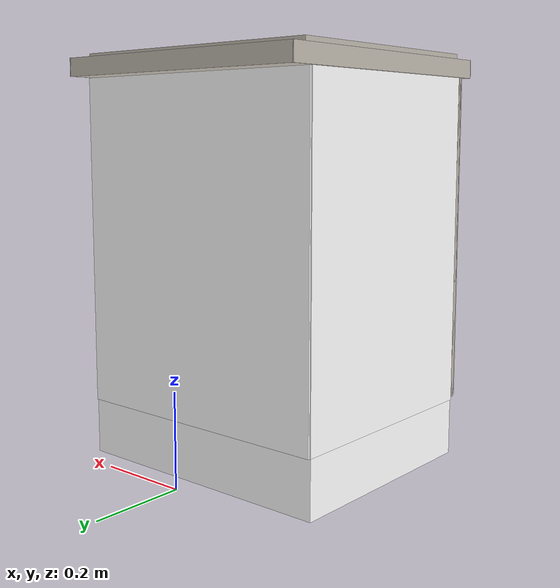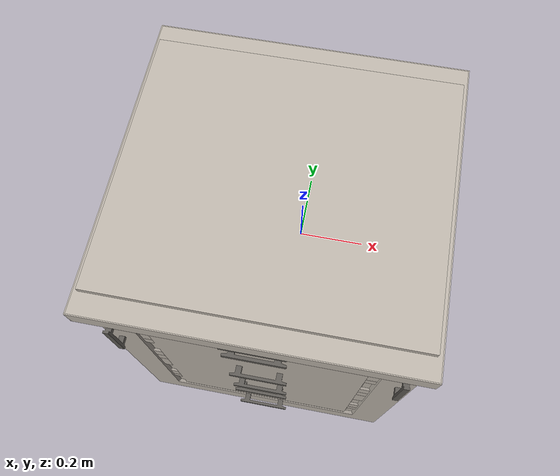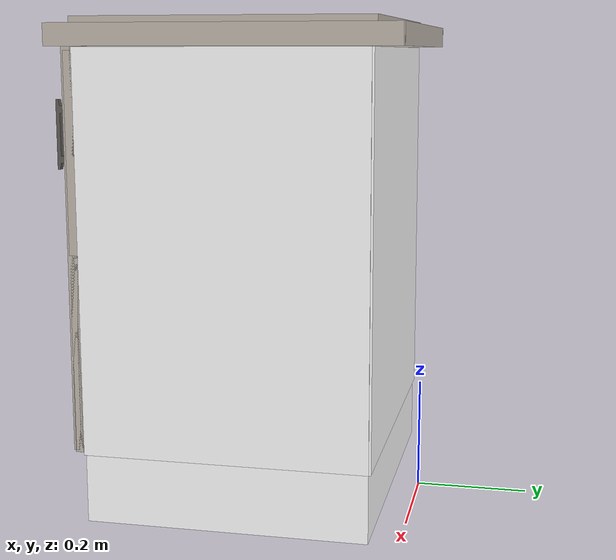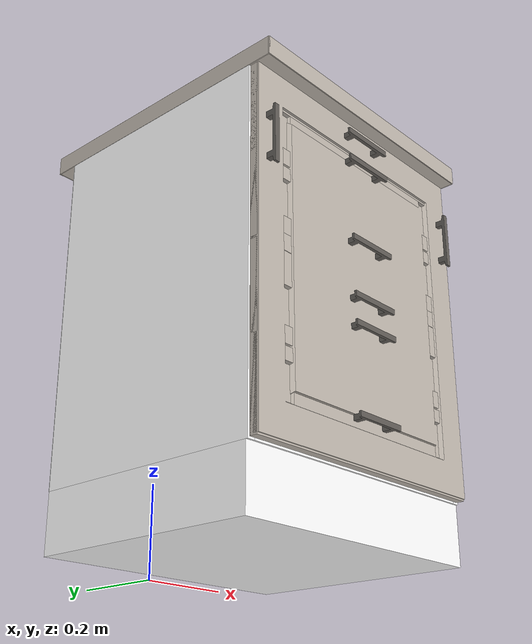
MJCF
<?xml version="1.0" encoding="utf-8"?>
<mujoco model="base_cabinet_600">
  <compiler angle="radian" meshdir="assets" texturedir="assets" autolimits="true"/>
  <asset>
    <texture type="2d" name="drawer_600_full" file="drawer_600_full.png"/>
    <texture type="2d" name="drawer_600_half" file="drawer_600_half.png"/>
    <texture type="2d" name="drawer_600_quarter" file="drawer_600_quarter.png"/>
    <texture type="2d" name="counter" file="counter.png"/>
    <texture type="2d" name="hob" file="hob.png"/>
    <texture type="2d" name="handle" file="handle.png"/>
    <material name="cabinet" shininess="0.1"/>
    <material name="back" shininess="0.1"/>
    <material name="counter" shininess="0.1" texture="counter" texuniform="true" texrepeat="2 2"/>
    <material name="hob" texture="hob"/>
    <material name="drawer_600_full" shininess="0.1" texture="drawer_600_full"/>
    <material name="drawer_600_half" shininess="0.1" texture="drawer_600_half"/>
    <material name="drawer_600_quarter" shininess="0.1" texture="drawer_600_quarter"/>
    <material name="handle" rgba="0.5 0.5 0.5 1" texture="handle"/>
    <mesh file="drawer_600_full.obj"/>
    <mesh file="drawer_600_half.obj"/>
    <mesh file="drawer_600_quarter.obj"/>
    <mesh file="drawer_handle.obj"/>
  </asset>
  <default>
    <default class="base_cabinet_600">
      <geom density="10" solimp="0.998 0.998 0.001" solref="0.004 1"/>
      <joint solimplimit="0.998 0.998 0.001" solreflimit="0.004 1"/>
      <default class="visual">
        <geom contype="0" conaffinity="0"/>
      </default>
      <default class="collision">
        <geom mass="0" group="3"/>
      </default>
      <site size="0.001" rgba="0.5 0.5 0.5 0.3" group="4"/>
    </default>
  </default>
  <worldbody>
    <body name="base_cabinet_600" childclass="base_cabinet_600">
      <body name="walls">
        <geom pos="0 -0.048 0.47" size="0.298 0.35 0.002" type="box" material="back" euler="1.5708 0 0"/>
        <geom pos="0.292 -0.3 0.47" size="0.25 0.35 0.008" type="box" material="cabinet" euler="1.5708 1.5708 0"/>
        <geom pos="-0.292 -0.3 0.47" size="0.25 0.35 0.008" type="box" material="cabinet" euler="1.5708 1.5708 0"/>
        <body name="shelf_bottom">
          <geom pos="0 -0.3 0.128" size="0.25 0.284 0.008" type="box" material="cabinet" euler="0 0 1.5708"/>
        </body>
        <geom pos="0 -0.51 0.812" size="0.04 0.284 0.008" type="box" material="cabinet" euler="0 0 1.5708"/>
        <geom pos="0 -0.298 0.06" size="0.3 0.06 0.248" type="box" material="cabinet" euler="1.5708 0 0"/>
      </body>
      <body name="counter" pos="0 -0.2985 0.84">
        <geom class="visual" size="0.298 0.298 0.019" type="box" material="counter" euler="0 0 1.5708"/>
        <geom class="visual" pos="0 -0.299 0" size="0.3 0.019 0.001" type="box" material="counter" euler="1.5708 0 0"/>
        <geom class="visual" pos="0 0.299 0" size="0.3 0.019 0.001" type="box" material="counter" euler="1.5708 0 0"/>
        <geom class="visual" pos="0.299 0 0" size="0.3 0.019 0.001" type="box" material="counter" euler="1.5708 1.5708 0"/>
        <geom class="visual" pos="-0.299 0 0" size="0.3 0.019 0.001" type="box" material="counter" euler="1.5708 1.5708 0"/>
        <geom class="collision" size="0.3 0.3 0.019" type="box" euler="0 0 1.5708" solimp="0.95 0.98 0.001"/>
      </body>
      <body name="hob" pos="0 -0.3 0.85">
        <geom size="0.29 0.257 0.02" type="box" material="hob" solimp="0.95 0.98 0.001"/>
        <site name="hob_site_1" pos="-0.155 -0.08 0.02"/>
        <site name="hob_site_2" pos="-0.155 0.142 0.02"/>
        <site name="hob_site_3" pos="0.122 0.122 0.02"/>
        <site name="hob_site_4" pos="0.168 -0.096 0.02"/>
      </body>
      <body name="shelf" pos="0 -0.2985 0.474">
        <geom size="0.25 0.284 0.008" type="box" material="cabinet" euler="0 0 1.5708"/>
      </body>
      <body name="panel" pos="0 -0.56 0.474">
        <geom pos="0 0 0" type="mesh" mesh="drawer_600_full" material="drawer_600_full" euler="1.5708 0 0"/>
      </body>
      <body name="door_right" pos="-0.29 -0.56 0.474">
        <joint pos="0 -0.008 0" name="door_right" type="hinge" axis="0 0 -1" damping="0.2" range="0 1.5708"/>
        <geom pos="0.29 -0.004 0" type="mesh" mesh="drawer_600_full" material="drawer_600_full" euler="1.5708 0 0"/>
        <body pos="0.56 0 0.2" euler="-3.1416 1.5708 0">
          <geom type="mesh" mesh="drawer_handle" material="handle" class="visual" euler="1.5708 0 0"/>
          <geom pos="0 0.027 0" size="0.06 0.0032 0.006" type="box" class="collision"/>
          <geom pos="-0.0425 0.015 0" size="0.006 0.015 0.006" type="box" class="collision"/>
          <geom pos="0.0425 0.015 0" size="0.006 0.015 0.006" type="box" class="collision"/>
        </body>
      </body>
      <body name="door_left" pos="0.29 -0.56 0.474">
        <joint pos="0 -0.008 0" name="door_left" type="hinge" axis="0 0 1" damping="0.2" range="0 1.5708"/>
        <geom pos="-0.29 -0.004 0" type="mesh" mesh="drawer_600_full" material="drawer_600_full" euler="1.5708 0 0"/>
        <body pos="-0.56 0 0.2" euler="-3.1416 1.5708 0">
          <geom type="mesh" mesh="drawer_handle" material="handle" class="visual" euler="1.5708 0 0"/>
          <geom pos="0 0.027 0" size="0.06 0.0032 0.006" type="box" class="collision"/>
          <geom pos="-0.0425 0.015 0" size="0.006 0.015 0.006" type="box" class="collision"/>
          <geom pos="0.0425 0.015 0" size="0.006 0.015 0.006" type="box" class="collision"/>
        </body>
      </body>
      <body name="drawer_big_1" pos="0 -0.325 0.148">
        <joint name="drawer_big_1" type="slide" axis="0 -1 0" damping="10" range="0 0.38" frictionloss="1"/>
        <geom pos="0 0 0" size="0.223 0.269 0.002" type="box" material="cabinet" euler="0 0 1.5708"/>
        <geom pos="-0.263 0 0.149" size="0.225 0.147 0.008" type="box" material="cabinet" euler="1.5708 1.5708 0"/>
        <geom pos="0.263 0 0.149" size="0.225 0.147 0.008" type="box" material="cabinet" euler="1.5708 1.5708 0"/>
        <geom pos="0 0.217 0.149" size="0.255 0.147 0.008" type="box" material="cabinet" euler="1.5708 0 0"/>
        <geom pos="0 -0.217 0.1475" size="0.255 0.147 0.008" type="box" material="cabinet" euler="1.5708 0 0"/>
        <geom pos="0 -0.236 0.1475" type="mesh" mesh="drawer_600_half" material="drawer_600_half" euler="1.5708 0 0"/>
        <body pos="0 -0.236 0.290" euler="-3.1416 0 0">
          <geom type="mesh" mesh="drawer_handle" material="handle" class="visual" euler="1.5708 0 0"/>
          <geom pos="0 0.027 0" size="0.06 0.0032 0.006" type="box" class="collision"/>
          <geom pos="-0.0425 0.015 0" size="0.006 0.015 0.006" type="box" class="collision"/>
          <geom pos="0.0425 0.015 0" size="0.006 0.015 0.006" type="box" class="collision"/>
        </body>
        <site name="drawer_big_1" pos="0 0 0.002"/>
      </body>
      <body name="drawer_big_2" pos="0 -0.325 0.495">
        <joint name="drawer_big_2" type="slide" axis="0 -1 0" damping="10" range="0 0.38" frictionloss="1"/>
        <geom pos="0 0 0" size="0.223 0.269 0.002" type="box" material="cabinet" euler="0 0 1.5708"/>
        <geom pos="-0.263 0 0.149" size="0.225 0.147 0.008" type="box" material="cabinet" euler="1.5708 1.5708 0"/>
        <geom pos="0.263 0 0.149" size="0.225 0.147 0.008" type="box" material="cabinet" euler="1.5708 1.5708 0"/>
        <geom pos="0 0.217 0.149" size="0.255 0.147 0.008" type="box" material="cabinet" euler="1.5708 0 0"/>
        <geom pos="0 -0.217 0.1475" size="0.255 0.147 0.008" type="box" material="cabinet" euler="1.5708 0 0"/>
        <geom pos="0 -0.236 0.1475" type="mesh" mesh="drawer_600_half" material="drawer_600_half" euler="1.5708 0 0"/>
        <body pos="0 -0.236 0.290" euler="-3.1416 0 0">
          <geom type="mesh" mesh="drawer_handle" material="handle" class="visual" euler="1.5708 0 0"/>
          <geom pos="0 0.027 0" size="0.06 0.0032 0.006" type="box" class="collision"/>
          <geom pos="-0.0425 0.015 0" size="0.006 0.015 0.006" type="box" class="collision"/>
          <geom pos="0.0425 0.015 0" size="0.006 0.015 0.006" type="box" class="collision"/>
        </body>
        <site name="drawer_big_2" pos="0 0 0.002"/>
      </body>
      <body name="drawer_small_1" pos="0 -0.325 0.148">
        <joint name="drawer_small_1" type="slide" axis="0 -1 0" damping="10" range="0 0.38" frictionloss="1"/>
        <geom pos="0 0 0" size="0.223 0.269 0.002" type="box" material="cabinet" euler="0 0 1.5708"/>
        <geom pos="-0.263 0 0.0605" size="0.225 0.059 0.008" type="box" material="cabinet" euler="1.5708 1.5708 0"/>
        <geom pos="0.263 0 0.0605" size="0.225 0.059 0.008" type="box" material="cabinet" euler="1.5708 1.5708 0"/>
        <geom pos="0 0.217 0.0605" size="0.255 0.059 0.008" type="box" material="cabinet" euler="1.5708 0 0"/>
        <geom pos="0 -0.217 0.0605" size="0.255 0.059 0.008" type="box" material="cabinet" euler="1.5708 0 0"/>
        <geom pos="0 -0.236 0.0623" type="mesh" mesh="drawer_600_quarter" material="drawer_600_quarter" euler="1.5708 0 0"/>
        <body pos="0 -0.236 0.0623" euler="-3.1416 0 0">
          <geom type="mesh" mesh="drawer_handle" material="handle" class="visual" euler="1.5708 0 0"/>
          <geom pos="0 0.027 0" size="0.06 0.0032 0.006" type="box" class="collision"/>
          <geom pos="-0.0425 0.015 0" size="0.006 0.015 0.006" type="box" class="collision"/>
          <geom pos="0.0425 0.015 0" size="0.006 0.015 0.006" type="box" class="collision"/>
        </body>
        <site name="drawer_small_1" pos="0 0 0.002"/>
      </body>
      <body name="drawer_small_2" pos="0 -0.325 0.32">
        <joint name="drawer_small_2" type="slide" axis="0 -1 0" damping="10" range="0 0.38" frictionloss="1"/>
        <geom pos="0 0 0" size="0.223 0.269 0.002" type="box" material="cabinet" euler="0 0 1.5708"/>
        <geom pos="-0.263 0 0.0605" size="0.225 0.059 0.008" type="box" material="cabinet" euler="1.5708 1.5708 0"/>
        <geom pos="0.263 0 0.0605" size="0.225 0.059 0.008" type="box" material="cabinet" euler="1.5708 1.5708 0"/>
        <geom pos="0 0.217 0.0605" size="0.255 0.059 0.008" type="box" material="cabinet" euler="1.5708 0 0"/>
        <geom pos="0 -0.217 0.0605" size="0.255 0.059 0.008" type="box" material="cabinet" euler="1.5708 0 0"/>
        <geom pos="0 -0.236 0.0623" type="mesh" mesh="drawer_600_quarter" material="drawer_600_quarter" euler="1.5708 0 0"/>
        <body pos="0 -0.236 0.0623" euler="-3.1416 0 0">
          <geom type="mesh" mesh="drawer_handle" material="handle" class="visual" euler="1.5708 0 0"/>
          <geom pos="0 0.027 0" size="0.06 0.0032 0.006" type="box" class="collision"/>
          <geom pos="-0.0425 0.015 0" size="0.006 0.015 0.006" type="box" class="collision"/>
          <geom pos="0.0425 0.015 0" size="0.006 0.015 0.006" type="box" class="collision"/>
        </body>
        <site name="drawer_small_2" pos="0 0 0.002"/>
      </body>
      <body name="drawer_small_3" pos="0 -0.325 0.492">
        <joint name="drawer_small_3" type="slide" axis="0 -1 0" damping="10" range="0 0.38" frictionloss="1"/>
        <geom pos="0 0 0" size="0.223 0.269 0.002" type="box" material="cabinet" euler="0 0 1.5708"/>
        <geom pos="-0.263 0 0.0605" size="0.225 0.059 0.008" type="box" material="cabinet" euler="1.5708 1.5708 0"/>
        <geom pos="0.263 0 0.0605" size="0.225 0.059 0.008" type="box" material="cabinet" euler="1.5708 1.5708 0"/>
        <geom pos="0 0.217 0.0605" size="0.255 0.059 0.008" type="box" material="cabinet" euler="1.5708 0 0"/>
        <geom pos="0 -0.217 0.0605" size="0.255 0.059 0.008" type="box" material="cabinet" euler="1.5708 0 0"/>
        <geom pos="0 -0.236 0.0623" type="mesh" mesh="drawer_600_quarter" material="drawer_600_quarter" euler="1.5708 0 0"/>
        <body pos="0 -0.236 0.0623" euler="-3.1416 0 0">
          <geom type="mesh" mesh="drawer_handle" material="handle" class="visual" euler="1.5708 0 0"/>
          <geom pos="0 0.027 0" size="0.06 0.0032 0.006" type="box" class="collision"/>
          <geom pos="-0.0425 0.015 0" size="0.006 0.015 0.006" type="box" class="collision"/>
          <geom pos="0.0425 0.015 0" size="0.006 0.015 0.006" type="box" class="collision"/>
        </body>
        <site name="drawer_small_3" pos="0 0 0.002"/>
      </body>
      <body name="drawer_small_4" pos="0 -0.325 0.664">
        <joint name="drawer_small_4" type="slide" axis="0 -1 0" damping="10" range="0 0.38" frictionloss="1"/>
        <geom pos="0 0 0" size="0.223 0.269 0.002" type="box" material="cabinet" euler="0 0 1.5708"/>
        <geom pos="-0.263 0 0.0605" size="0.225 0.059 0.008" type="box" material="cabinet" euler="1.5708 1.5708 0"/>
        <geom pos="0.263 0 0.0605" size="0.225 0.059 0.008" type="box" material="cabinet" euler="1.5708 1.5708 0"/>
        <geom pos="0 0.217 0.0605" size="0.255 0.059 0.008" type="box" material="cabinet" euler="1.5708 0 0"/>
        <geom pos="0 -0.217 0.0605" size="0.255 0.059 0.008" type="box" material="cabinet" euler="1.5708 0 0"/>
        <geom pos="0 -0.236 0.0623" type="mesh" mesh="drawer_600_quarter" material="drawer_600_quarter" euler="1.5708 0 0"/>
        <body pos="0 -0.236 0.0623" euler="-3.1416 0 0">
          <geom type="mesh" mesh="drawer_handle" material="handle" class="visual" euler="1.5708 0 0"/>
          <geom pos="0 0.027 0" size="0.06 0.0032 0.006" type="box" class="collision"/>
          <geom pos="-0.0425 0.015 0" size="0.006 0.015 0.006" type="box" class="collision"/>
          <geom pos="0.0425 0.015 0" size="0.006 0.015 0.006" type="box" class="collision"/>
        </body>
        <site name="drawer_small_4" pos="0 0 0.002"/>
      </body>
    </body>
  </worldbody>
</mujoco>
